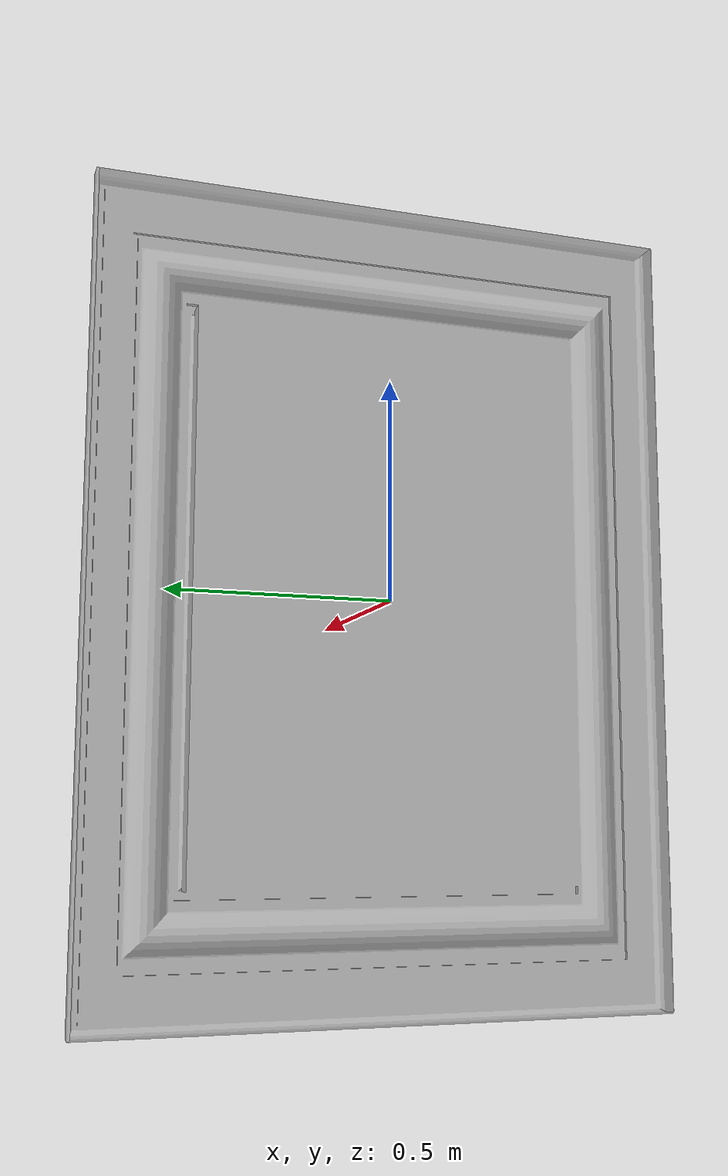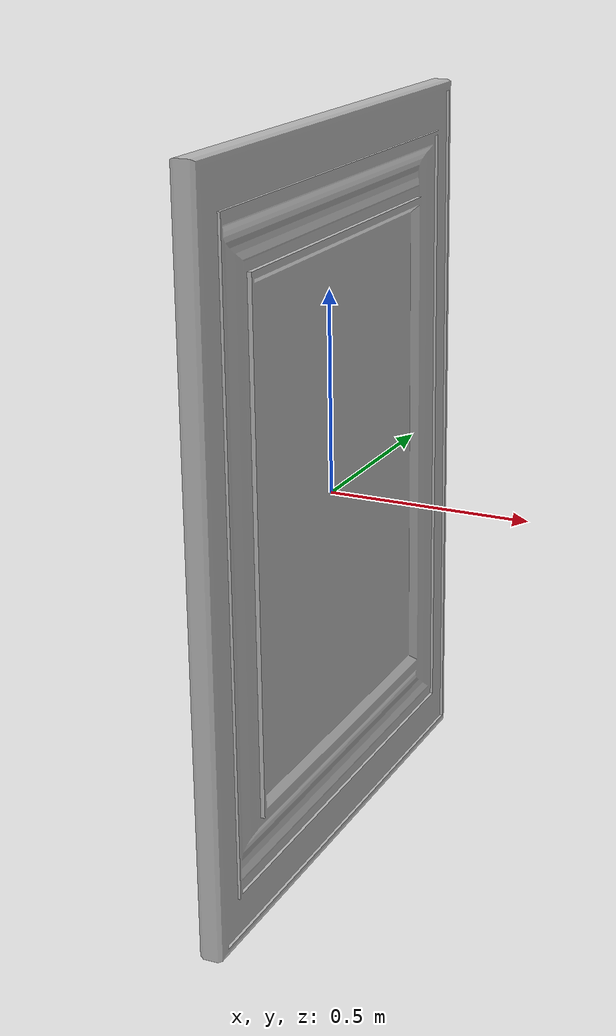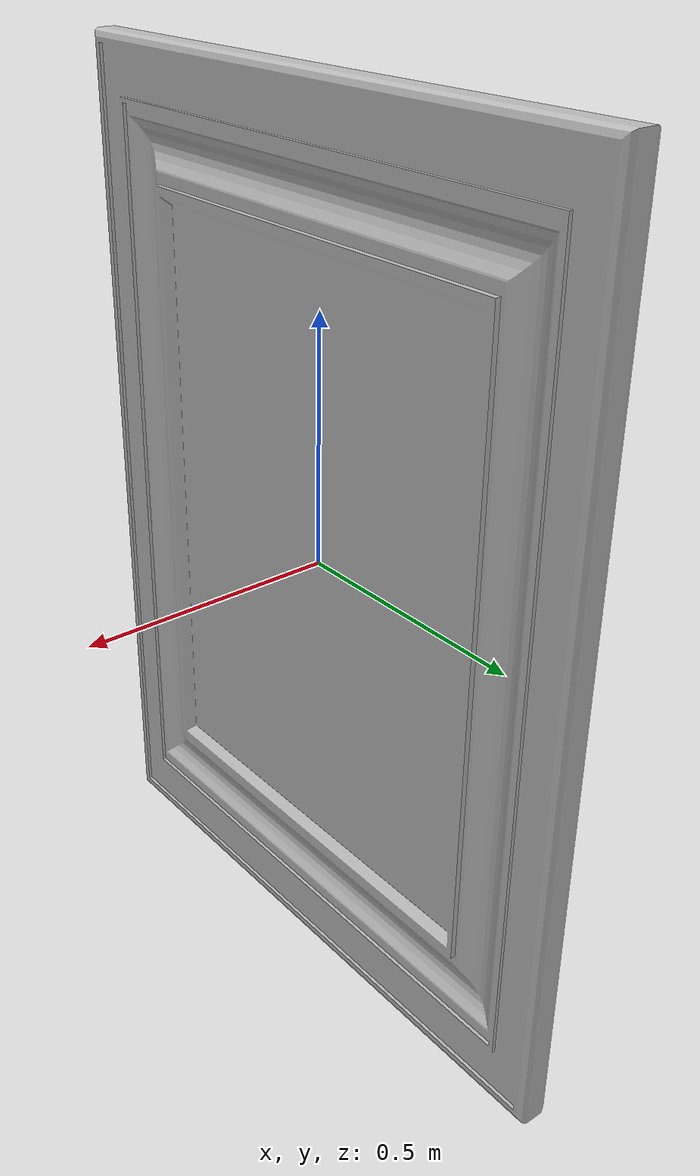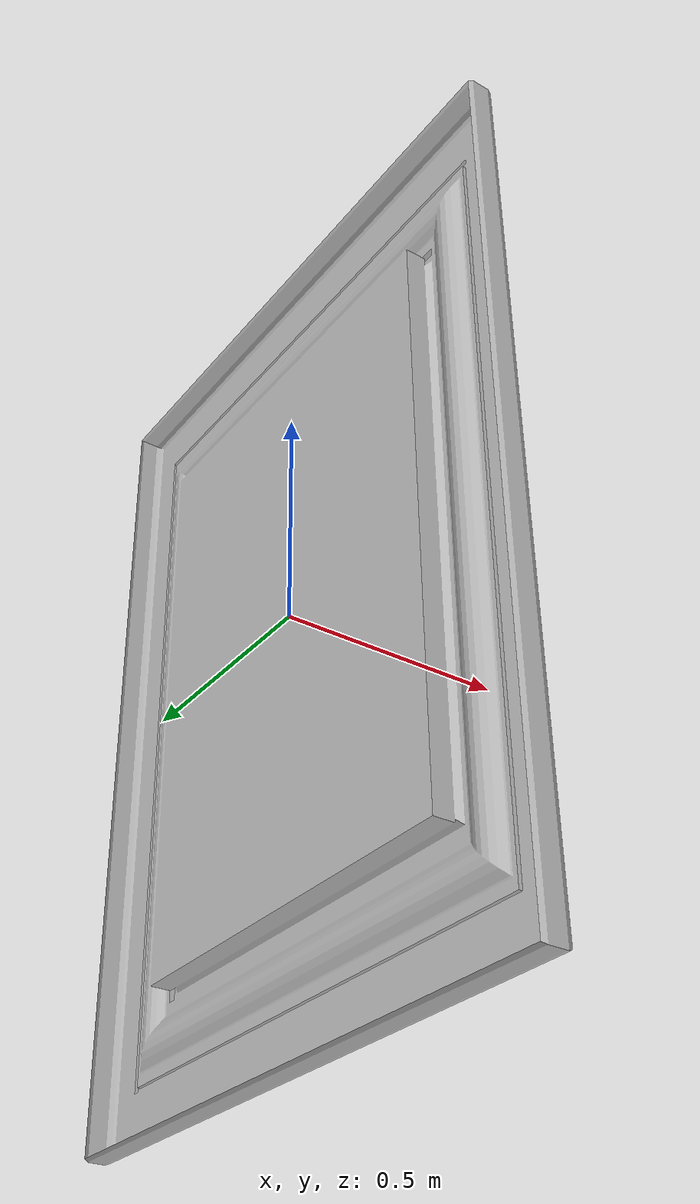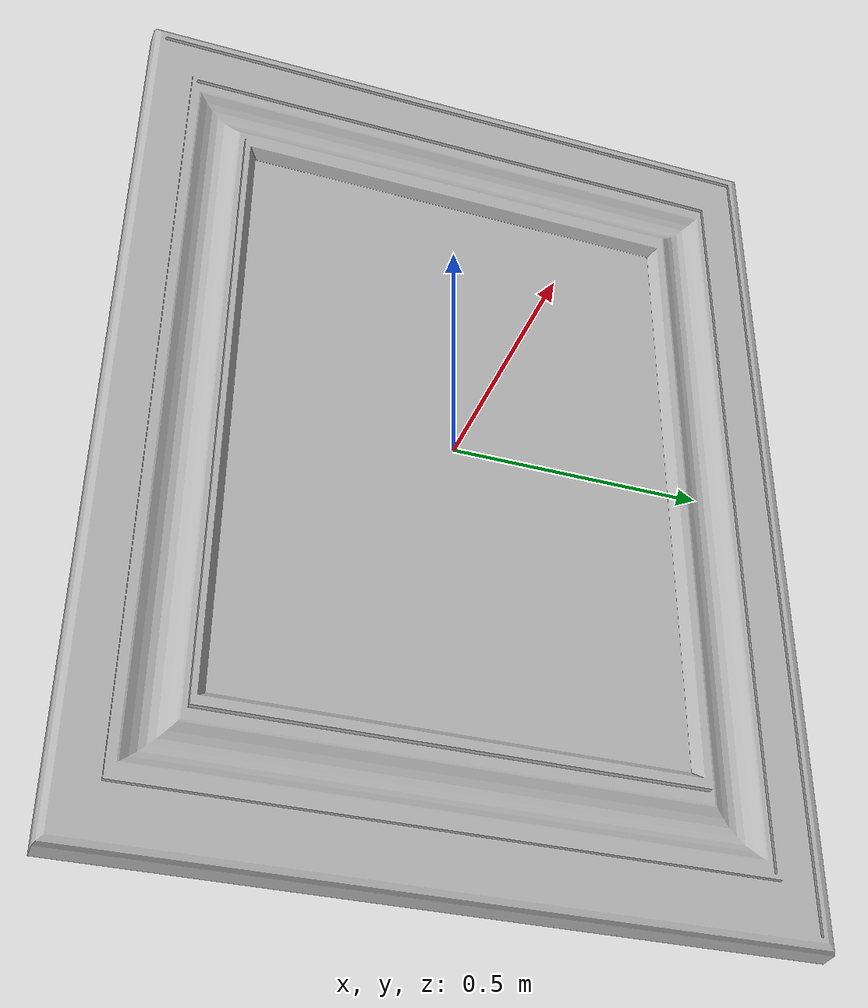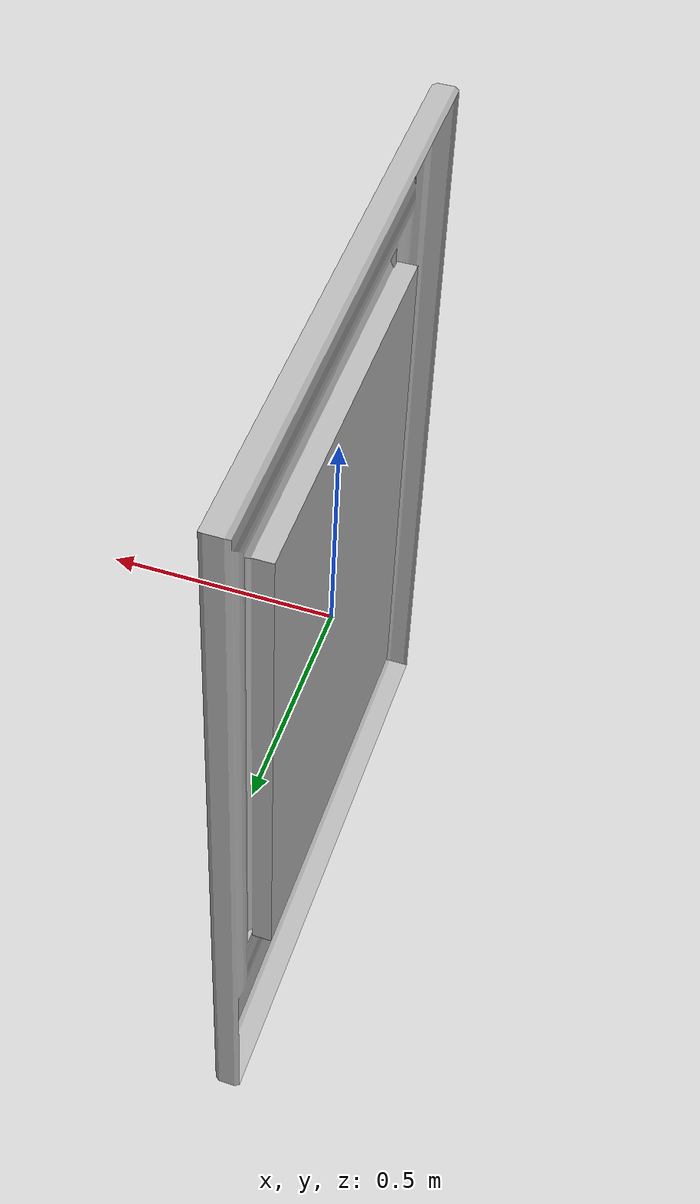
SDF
<?xml version='1.0'?>
<sdf version='1.6'>
  <model name='painting_monalisa'>
    <link name='link_1'>
         <visual name='visual'>
        <pose frame=''>0 0 0 0 -0 0</pose>
        <geometry>
          <mesh>
            <uri>model://painting_monalisa/meshes/monalisa.dae</uri>
            <scale>1.0 1.0 1.0</scale>
          </mesh>
        </geometry>
        <cast_shadows>0</cast_shadows>
        <transparency>0</transparency>
      </visual>
    </link>

    <static>1</static>
    <allow_auto_disable>1</allow_auto_disable>
  </model>
</sdf>
